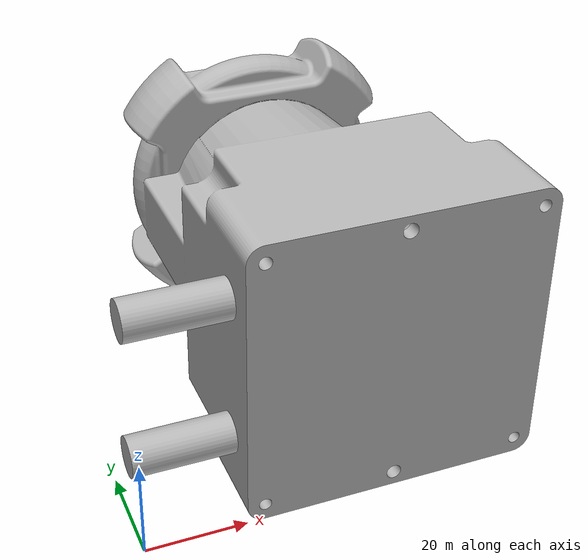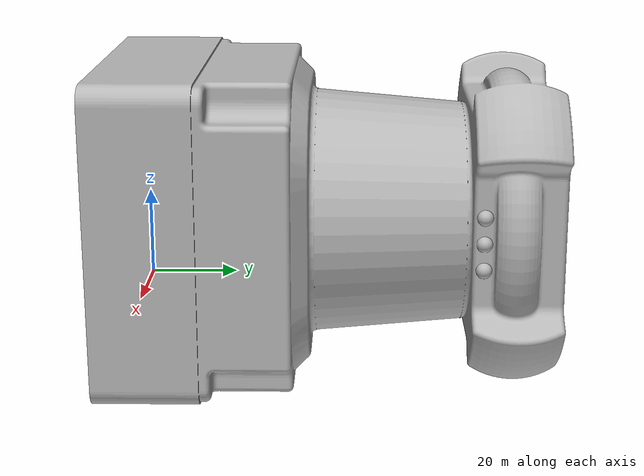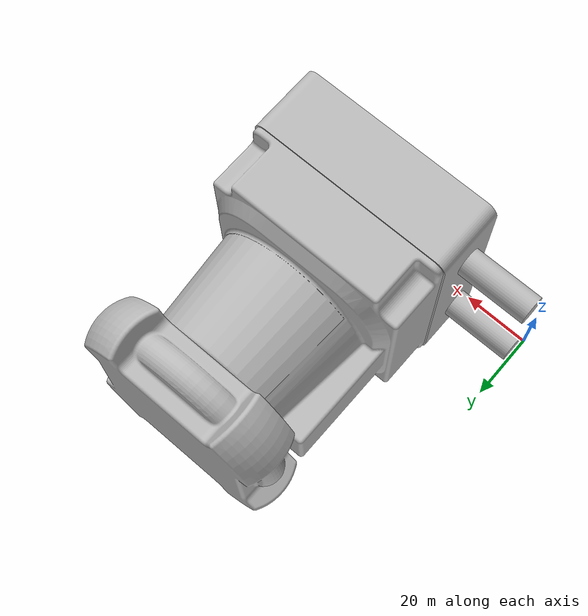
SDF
<?xml version="1.0" ?>
<sdf version="1.0">
  <model name="hokuyo_horizontal">
    <pose>0 0 0 0 0 0</pose>
    <link name="hukuyo_horizontal">
      <inertial>
        <mass>0.1</mass>
      </inertial>
      <visual name="visual">
        <geometry>
          <mesh>
            <uri>model://hokuyo_horizontal/meshes/hokuyo_horizontal.dae</uri>
          </mesh>
        </geometry>
      </visual>
      <collision name="collision-base">
        <pose>0 0 -0.0145 0 0 0</pose>
        <geometry>
          <box>
            <size>0.05 0.05 0.041</size>
          </box>
        </geometry>
      </collision>
      <collision name="collision-top">
        <pose>0 0 0.0205 0 0 0</pose>
        <geometry>
          <cylinder>
            <radius>0.021</radius>
            <length>0.029</length>
          </cylinder>
        </geometry>
      </collision>
      <sensor name="laser" type="ray">
        <pose>0.01 0 0.0175 0 -0 0</pose>
        <ray>
          <scan>
            <horizontal>
              <samples>50</samples>
              <resolution>1</resolution>
              <min_angle>-2.26889</min_angle>
              <max_angle>2.268899</max_angle>
            </horizontal>
          </scan>
          <range>
            <min>0.08</min>
            <max>10</max>
            <resolution>0.01</resolution>
          </range>
        </ray>
        <plugin name="laser" filename="libRayPlugin.so" />
        <always_on>1</always_on>
        <update_rate>30</update_rate>
        <visualize>false</visualize>
      </sensor>
    </link>
  </model>
</sdf>
